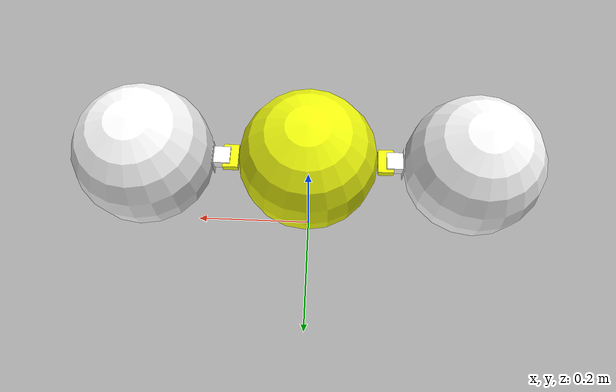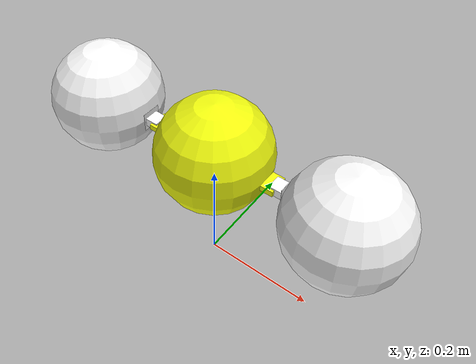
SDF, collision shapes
<?xml version='1.0' encoding='utf8'?>
<sdf version="1.6"><model name="basic_revolve"><pose>0.000000e+00 0.000000e+00 2.500000e-01 0.000000e+00 -0.000000e+00 0.000000e+00</pose><joint name="component_Body_ActiveHinge__joint" type="revolute"><pose>-1.197488e-01 0.000000e+00 0.000000e+00 0.000000e+00 -0.000000e+00 0.000000e+00</pose><parent>Core</parent><child>Body_Leg</child><axis><xyz>0.000000e+00 1.000000e+00 0.000000e+00</xyz><use_parent_model_frame>0</use_parent_model_frame><limit><lower>-7.853982e-01</lower><upper>7.853982e-01</upper><effort>1.765800e-01</effort><velocity>5.235988e+00</velocity></limit></axis></joint><joint name="component_Body_ActiveHinge__joint" type="revolute"><pose>1.197488e-01 0.000000e+00 0.000000e+00 3.141593e+00 -0.000000e+00 3.141593e+00</pose><parent>Core</parent><child>Body_Leg</child><axis><xyz>0.000000e+00 1.000000e+00 0.000000e+00</xyz><use_parent_model_frame>0</use_parent_model_frame><limit><lower>-7.853982e-01</lower><upper>7.853982e-01</upper><effort>1.765800e-01</effort><velocity>5.235988e+00</velocity></limit></axis></joint><link name="Core"><pose>-2.701321e-20 0.000000e+00 0.000000e+00 0.000000e+00 -0.000000e+00 0.000000e+00</pose><self_collide>True</self_collide><sensor name="core-imu_sensor" type="imu"><pose>2.701321e-20 0.000000e+00 0.000000e+00 0.000000e+00 -0.000000e+00 0.000000e+00</pose><always_on>True</always_on></sensor><visual name="body_link_1_visual">
        <pose>2.701321e-20 0.000000e+00 0.000000e+00 0.000000e+00 -0.000000e+00 0.000000e+00</pose><geometry>
          <sphere>
            <radius>0.1</radius>
          </sphere>
        </geometry>
      <material><ambient>0.94 0.98 0.05 1.0</ambient><diffuse>0.94 0.98 0.05 1.0</diffuse><specular>0.1 0.1 0.1 1.0</specular></material></visual>
      <collision name="body_link_collision">
        <pose>2.701321e-20 0.000000e+00 0.000000e+00 0.000000e+00 -0.000000e+00 0.000000e+00</pose><geometry>
          <sphere>
            <radius>0.1</radius>
          </sphere>
        </geometry>
        <surface>
          <contact>
            <ode />
          </contact>
          <friction>
            <ode />
          </friction>
        </surface>
      </collision>
      <visual name="component_Body_ActiveHinge__frame_visual"><pose>1.110000e-01 0.000000e+00 0.000000e+00 0.000000e+00 -0.000000e+00 0.000000e+00</pose><material><ambient>0.98 0.98 0.98 1.0</ambient><diffuse>0.98 0.98 0.98 1.0</diffuse><specular>0.1 0.1 0.1 1.0</specular></material><geometry><mesh><uri>model://rg_robot/meshes/ActiveHinge_Frame.dae</uri></mesh></geometry></visual><collision name="component_Body_ActiveHinge__frame_collision"><pose>1.110000e-01 0.000000e+00 0.000000e+00 0.000000e+00 -0.000000e+00 0.000000e+00</pose><surface><contact><ode><kd>3.333333e+06</kd><kp>9.000000e+04</kp></ode></contact><friction><ode><mu>1.000000e+00</mu><mu2>1.000000e+00</mu2><slip1>1.000000e-02</slip1><slip2>1.000000e-02</slip2></ode><bullet><friction>1.000000e+00</friction><friction2>1.000000e+00</friction2></bullet></friction></surface><geometry><box><size>2.200000e-02 3.575000e-02 1.000000e-02</size></box></geometry></collision><visual name="component_Body_ActiveHinge__frame_visual"><pose>-1.110000e-01 0.000000e+00 0.000000e+00 3.141593e+00 -0.000000e+00 3.141593e+00</pose><material><ambient>0.98 0.98 0.98 1.0</ambient><diffuse>0.98 0.98 0.98 1.0</diffuse><specular>0.1 0.1 0.1 1.0</specular></material><geometry><mesh><uri>model://rg_robot/meshes/ActiveHinge_Frame.dae</uri></mesh></geometry></visual><collision name="component_Body_ActiveHinge__frame_collision"><pose>-1.110000e-01 0.000000e+00 0.000000e+00 3.141593e+00 -0.000000e+00 3.141593e+00</pose><surface><contact><ode><kd>3.333333e+06</kd><kp>9.000000e+04</kp></ode></contact><friction><ode><mu>1.000000e+00</mu><mu2>1.000000e+00</mu2><slip1>1.000000e-02</slip1><slip2>1.000000e-02</slip2></ode><bullet><friction>1.000000e+00</friction><friction2>1.000000e+00</friction2></bullet></friction></surface><geometry><box><size>2.200000e-02 3.575000e-02 1.000000e-02</size></box></geometry></collision></link><link name="Body_Leg"><pose>2.353988e-01 0.000000e+00 0.000000e+00 0.000000e+00 -0.000000e+00 0.000000e+00</pose><self_collide>True</self_collide><visual name="component_Body_ActiveHinge__servo_visual"><pose>-1.112488e-01 0.000000e+00 0.000000e+00 0.000000e+00 -0.000000e+00 0.000000e+00</pose><material><ambient>0.98 0.98 0.98 1.0</ambient><diffuse>0.98 0.98 0.98 1.0</diffuse><specular>0.1 0.1 0.1 1.0</specular></material><geometry><mesh><uri>model://rg_robot/meshes/ActiveCardanHinge_Servo_Holder.dae</uri></mesh></geometry></visual><collision name="component_Body_ActiveHinge__servo_collision"><pose>-1.112488e-01 0.000000e+00 0.000000e+00 0.000000e+00 -0.000000e+00 0.000000e+00</pose><surface><contact><ode><kd>3.333333e+06</kd><kp>9.000000e+04</kp></ode></contact><friction><ode><mu>1.000000e+00</mu><mu2>1.000000e+00</mu2><slip1>1.000000e-02</slip1><slip2>1.000000e-02</slip2></ode><bullet><friction>1.000000e+00</friction><friction2>1.000000e+00</friction2></bullet></friction></surface><geometry><box><size>2.450000e-02 2.575000e-02 1.500000e-02</size></box></geometry></collision><collision name="component_Body_ActiveHinge__servo2_collision"><pose>-9.949876e-02 1.000000e-03 0.000000e+00 0.000000e+00 -0.000000e+00 0.000000e+00</pose><surface><contact><ode><kd>3.333333e+06</kd><kp>9.000000e+04</kp></ode></contact><friction><ode><mu>1.000000e+00</mu><mu2>1.000000e+00</mu2><slip1>1.000000e-02</slip1><slip2>1.000000e-02</slip2></ode><bullet><friction>1.000000e+00</friction><friction2>1.000000e+00</friction2></bullet></friction></surface><geometry><box><size>1.000000e-03 3.400000e-02 3.400000e-02</size></box></geometry></collision><visual name="Visual_Leg00">
        <pose>1.001239e-03 0.000000e+00 0.000000e+00 3.141593e+00 -0.000000e+00 3.141593e+00</pose><geometry>
          <sphere>
            <radius>0.1</radius>
          </sphere>
        </geometry>
      <material><ambient>0.94 0.98 0.05 1.0</ambient><diffuse>0.94 0.98 0.05 1.0</diffuse><specular>0.1 0.1 0.1 1.0</specular></material></visual>
      <collision name="Collisions_Leg00">
        <pose>1.001239e-03 0.000000e+00 0.000000e+00 3.141593e+00 -0.000000e+00 3.141593e+00</pose><geometry>
          <sphere>
            <radius>0.1</radius>
          </sphere>
        </geometry>
        <surface>
          <contact>
            <ode />
          </contact>
          <friction>
            <ode />
          </friction>
        </surface>
      </collision>
      </link><link name="Body_Leg"><pose>-2.353988e-01 0.000000e+00 0.000000e+00 0.000000e+00 -0.000000e+00 0.000000e+00</pose><self_collide>True</self_collide><visual name="component_Body_ActiveHinge__servo_visual"><pose>1.112488e-01 0.000000e+00 0.000000e+00 3.141593e+00 -0.000000e+00 3.141593e+00</pose><material><ambient>0.98 0.98 0.98 1.0</ambient><diffuse>0.98 0.98 0.98 1.0</diffuse><specular>0.1 0.1 0.1 1.0</specular></material><geometry><mesh><uri>model://rg_robot/meshes/ActiveCardanHinge_Servo_Holder.dae</uri></mesh></geometry></visual><collision name="component_Body_ActiveHinge__servo_collision"><pose>1.112488e-01 0.000000e+00 0.000000e+00 3.141593e+00 -0.000000e+00 3.141593e+00</pose><surface><contact><ode><kd>3.333333e+06</kd><kp>9.000000e+04</kp></ode></contact><friction><ode><mu>1.000000e+00</mu><mu2>1.000000e+00</mu2><slip1>1.000000e-02</slip1><slip2>1.000000e-02</slip2></ode><bullet><friction>1.000000e+00</friction><friction2>1.000000e+00</friction2></bullet></friction></surface><geometry><box><size>2.450000e-02 2.575000e-02 1.500000e-02</size></box></geometry></collision><collision name="component_Body_ActiveHinge__servo2_collision"><pose>9.949876e-02 1.000000e-03 0.000000e+00 3.141593e+00 -0.000000e+00 3.141593e+00</pose><surface><contact><ode><kd>3.333333e+06</kd><kp>9.000000e+04</kp></ode></contact><friction><ode><mu>1.000000e+00</mu><mu2>1.000000e+00</mu2><slip1>1.000000e-02</slip1><slip2>1.000000e-02</slip2></ode><bullet><friction>1.000000e+00</friction><friction2>1.000000e+00</friction2></bullet></friction></surface><geometry><box><size>1.000000e-03 3.400000e-02 3.400000e-02</size></box></geometry></collision><visual name="Visual_Leg00">
        <pose>-1.001239e-03 0.000000e+00 0.000000e+00 0.000000e+00 -0.000000e+00 0.000000e+00</pose><geometry>
          <sphere>
            <radius>0.1</radius>
          </sphere>
        </geometry>
      <material><ambient>0.94 0.98 0.05 1.0</ambient><diffuse>0.94 0.98 0.05 1.0</diffuse><specular>0.1 0.1 0.1 1.0</specular></material></visual>
      <collision name="Collisions_Leg00">
        <pose>-1.001239e-03 0.000000e+00 0.000000e+00 0.000000e+00 -0.000000e+00 0.000000e+00</pose><geometry>
          <sphere>
            <radius>0.1</radius>
          </sphere>
        </geometry>
        <surface>
          <contact>
            <ode />
          </contact>
          <friction>
            <ode />
          </friction>
        </surface>
      </collision>
      </link></model></sdf>
